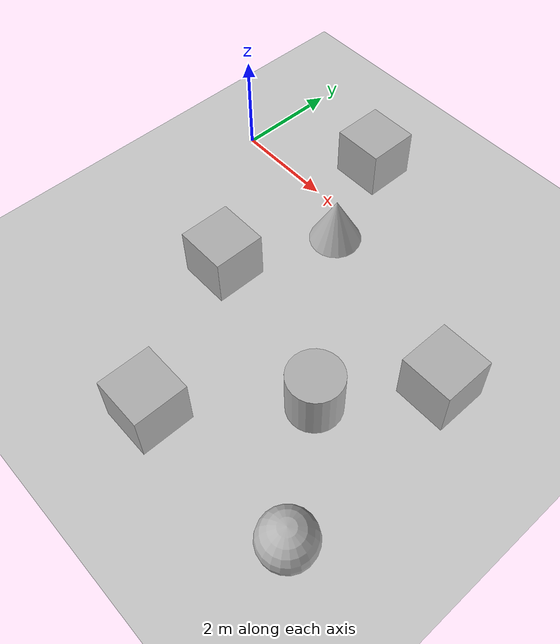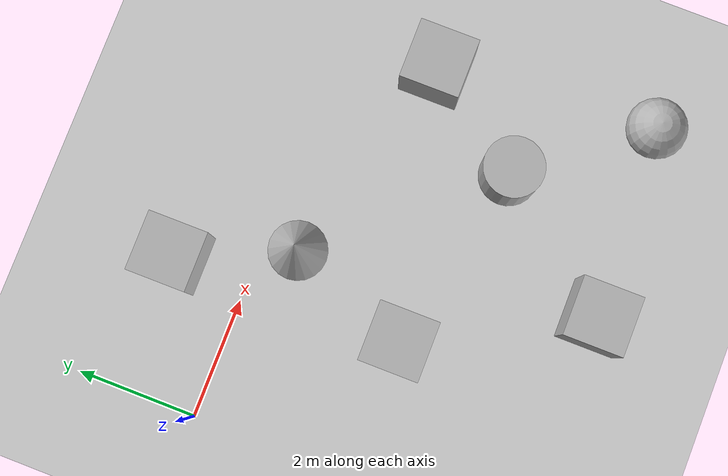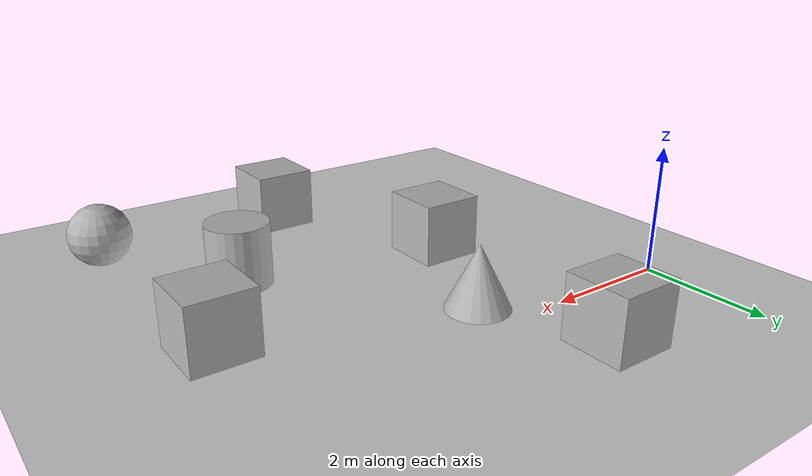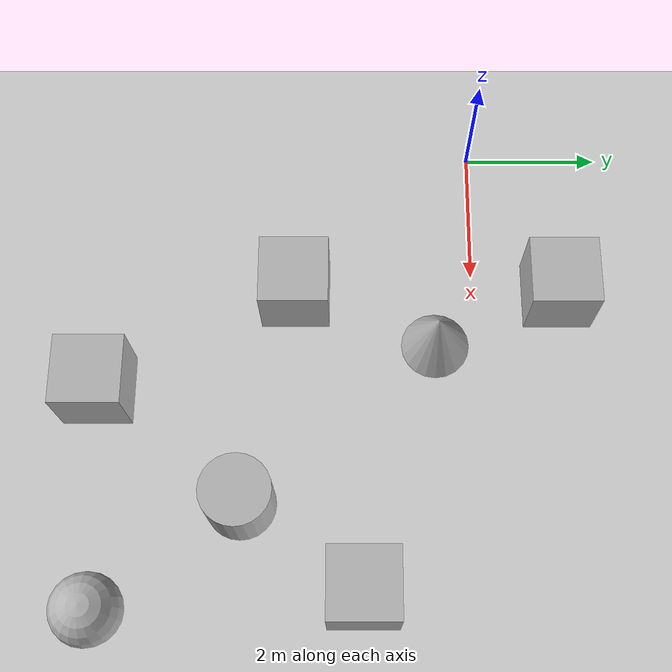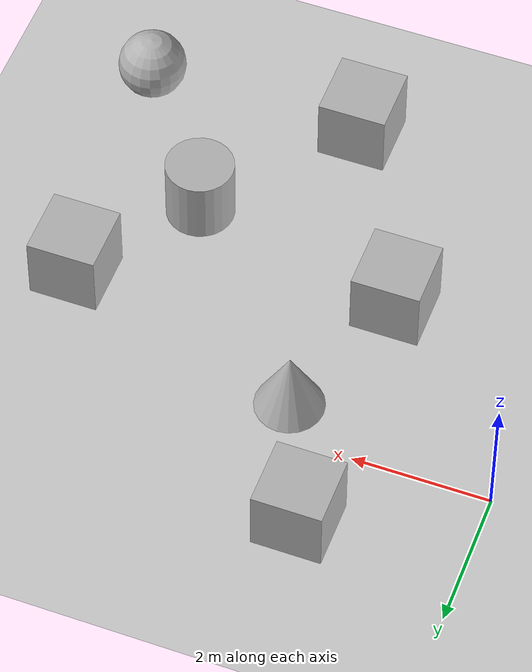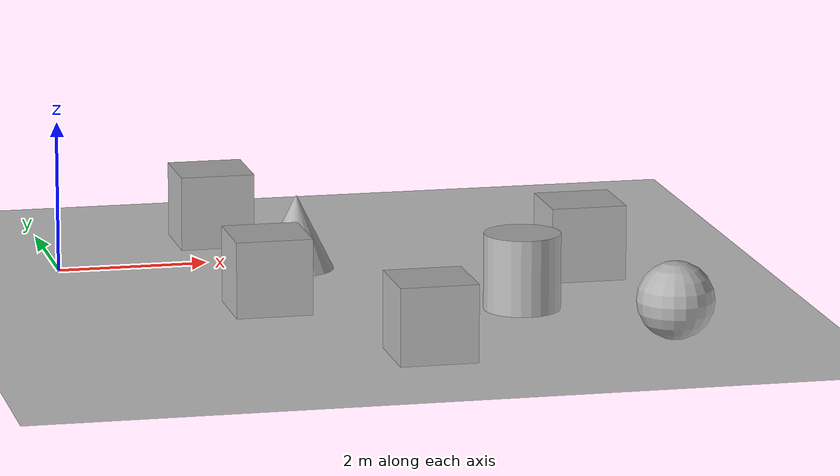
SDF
<sdf version='1.10'>
  <world name='my_world'>
    <physics name='1ms' type='ignored'>
      <max_step_size>0.001</max_step_size>
      <real_time_factor>1</real_time_factor>
      <real_time_update_rate>1000</real_time_update_rate>
    </physics>
    <plugin name='gz::sim::systems::Physics' filename='gz-sim-physics-system'/>
    <plugin name='gz::sim::systems::UserCommands' filename='gz-sim-user-commands-system'/>
    <plugin name='gz::sim::systems::SceneBroadcaster' filename='gz-sim-scene-broadcaster-system'/>
    <plugin name='gz::sim::systems::Sensors' filename='gz-sim-sensors-system'>
      <render_engine>ogre2</render_engine>
    </plugin>
    <gravity>0 0 -9.8000000000000007</gravity>
    <magnetic_field>5.5644999999999998e-06 2.2875799999999999e-05 -4.2388400000000002e-05</magnetic_field>
    <atmosphere type='adiabatic'/>
    <scene>
      <ambient>0.400000006 0.400000006 0.400000006 1</ambient>
      <background>0.699999988 0.699999988 0.699999988 1</background>
      <shadows>true</shadows>
    </scene>
    <model name='ground_plane'>
      <static>true</static>
      <link name='link'>
        <collision name='collision'>
          <geometry>
            <plane>
              <normal>0 0 1</normal>
              <size>100 100</size>
            </plane>
          </geometry>
          <surface>
            <friction>
              <ode/>
            </friction>
            <bounce/>
            <contact/>
          </surface>
        </collision>
        <visual name='visual'>
          <geometry>
            <plane>
              <normal>0 0 1</normal>
              <size>100 100</size>
            </plane>
          </geometry>
          <material>
            <ambient>0.800000012 0.800000012 0.800000012 1</ambient>
            <diffuse>0.800000012 0.800000012 0.800000012 1</diffuse>
            <specular>0.800000012 0.800000012 0.800000012 1</specular>
          </material>
        </visual>
        <pose>0 0 0 0 0 0</pose>
        <inertial>
          <pose>0 0 0 0 0 0</pose>
          <mass>1</mass>
          <inertia>
            <ixx>1</ixx>
            <ixy>0</ixy>
            <ixz>0</ixz>
            <iyy>1</iyy>
            <iyz>0</iyz>
            <izz>1</izz>
          </inertia>
        </inertial>
        <enable_wind>false</enable_wind>
      </link>
      <pose>0 0 0 0 0 0</pose>
      <self_collide>false</self_collide>
    </model>
    <model name='box'>
      <pose>2.3013719987578574 1.254581479618619 0.49999999019962799 3.5121241614875925e-18 -5.180946072981772e-17 1.2500827284559298e-17</pose>
      <link name='box_link'>
        <inertial>
          <inertia>
            <ixx>0.16666</ixx>
            <ixy>0</ixy>
            <ixz>0</ixz>
            <iyy>0.16666</iyy>
            <iyz>0</iyz>
            <izz>0.16666</izz>
          </inertia>
          <mass>1</mass>
          <pose>0 0 0 0 0 0</pose>
        </inertial>
        <collision name='box_collision'>
          <geometry>
            <box>
              <size>1 1 1</size>
            </box>
          </geometry>
          <surface>
            <friction>
              <ode/>
            </friction>
            <bounce/>
            <contact/>
          </surface>
        </collision>
        <visual name='box_visual'>
          <geometry>
            <box>
              <size>1 1 1</size>
            </box>
          </geometry>
          <material>
            <ambient>0.300000012 0.300000012 0.300000012 1</ambient>
            <diffuse>0.699999988 0.699999988 0.699999988 1</diffuse>
            <specular>1 1 1 1</specular>
          </material>
        </visual>
        <pose>0 0 0 0 0 0</pose>
        <enable_wind>false</enable_wind>
      </link>
      <static>false</static>
      <self_collide>false</self_collide>
    </model>
    <model name='box_0'>
      <pose>6.714759485641876 -1.6379969433879151 0.49999999019962615 6.2417043928416177e-19 -5.402248854504888e-17 1.383752955343259e-17</pose>
      <link name='box_link'>
        <inertial>
          <inertia>
            <ixx>0.16666</ixx>
            <ixy>0</ixy>
            <ixz>0</ixz>
            <iyy>0.16666</iyy>
            <iyz>0</iyz>
            <izz>0.16666</izz>
          </inertia>
          <mass>1</mass>
          <pose>0 0 0 0 0 0</pose>
        </inertial>
        <collision name='box_collision'>
          <geometry>
            <box>
              <size>1 1 1</size>
            </box>
          </geometry>
          <surface>
            <friction>
              <ode/>
            </friction>
            <bounce/>
            <contact/>
          </surface>
        </collision>
        <visual name='box_visual'>
          <geometry>
            <box>
              <size>1 1 1</size>
            </box>
          </geometry>
          <material>
            <ambient>0.300000012 0.300000012 0.300000012 1</ambient>
            <diffuse>0.699999988 0.699999988 0.699999988 1</diffuse>
            <specular>1 1 1 1</specular>
          </material>
        </visual>
        <pose>0 0 0 0 0 0</pose>
        <enable_wind>false</enable_wind>
      </link>
      <static>false</static>
      <self_collide>false</self_collide>
    </model>
    <model name='box_1'>
      <pose>2.2954957449747617 -2.638305858610944 0.49999999019962749 3.3387404953613142e-18 -5.206132862729415e-17 1.2347924713621128e-17</pose>
      <link name='box_link'>
        <inertial>
          <inertia>
            <ixx>0.16666</ixx>
            <ixy>0</ixy>
            <ixz>0</ixz>
            <iyy>0.16666</iyy>
            <iyz>0</iyz>
            <izz>0.16666</izz>
          </inertia>
          <mass>1</mass>
          <pose>0 0 0 0 0 0</pose>
        </inertial>
        <collision name='box_collision'>
          <geometry>
            <box>
              <size>1 1 1</size>
            </box>
          </geometry>
          <surface>
            <friction>
              <ode/>
            </friction>
            <bounce/>
            <contact/>
          </surface>
        </collision>
        <visual name='box_visual'>
          <geometry>
            <box>
              <size>1 1 1</size>
            </box>
          </geometry>
          <material>
            <ambient>0.300000012 0.300000012 0.300000012 1</ambient>
            <diffuse>0.699999988 0.699999988 0.699999988 1</diffuse>
            <specular>1 1 1 1</specular>
          </material>
        </visual>
        <pose>0 0 0 0 0 0</pose>
        <enable_wind>false</enable_wind>
      </link>
      <static>false</static>
      <self_collide>false</self_collide>
    </model>
    <model name='cone'>
      <pose>3.1058620561734416 -0.57084550726240002 0.49999999602630385 2.1478264488938136e-09 -8.015038703800579e-09 -1.1826538266170839e-13</pose>
      <link name='cone_link'>
        <inertial>
          <inertia>
            <ixx>0.074999999999999997</ixx>
            <ixy>0</ixy>
            <ixz>0</ixz>
            <iyy>0.074999999999999997</iyy>
            <iyz>0</iyz>
            <izz>0.074999999999999997</izz>
          </inertia>
          <mass>1</mass>
          <pose>0 0 0 0 0 0</pose>
        </inertial>
        <collision name='cone_collision'>
          <geometry>
            <cone>
              <radius>0.5</radius>
              <length>1</length>
            </cone>
          </geometry>
          <surface>
            <friction>
              <ode/>
            </friction>
            <bounce/>
            <contact/>
          </surface>
        </collision>
        <visual name='cone_visual'>
          <geometry>
            <cone>
              <radius>0.5</radius>
              <length>1</length>
            </cone>
          </geometry>
          <material>
            <ambient>0.300000012 0.300000012 0.300000012 1</ambient>
            <diffuse>0.699999988 0.699999988 0.699999988 1</diffuse>
            <specular>1 1 1 1</specular>
          </material>
        </visual>
        <pose>0 0 0 0 0 0</pose>
        <enable_wind>false</enable_wind>
      </link>
      <static>false</static>
      <self_collide>false</self_collide>
    </model>
    <model name='sphere'>
      <pose>7.0054008440719784 -5.3078883988722856 0.49999999020007974 0 0 0</pose>
      <link name='sphere_link'>
        <inertial>
          <inertia>
            <ixx>0.10000000000000001</ixx>
            <ixy>0</ixy>
            <ixz>0</ixz>
            <iyy>0.10000000000000001</iyy>
            <iyz>0</iyz>
            <izz>0.10000000000000001</izz>
          </inertia>
          <mass>1</mass>
          <pose>0 0 0 0 0 0</pose>
        </inertial>
        <collision name='sphere_collision'>
          <geometry>
            <sphere>
              <radius>0.5</radius>
            </sphere>
          </geometry>
          <surface>
            <friction>
              <ode/>
            </friction>
            <bounce/>
            <contact/>
          </surface>
        </collision>
        <visual name='sphere_visual'>
          <geometry>
            <sphere>
              <radius>0.5</radius>
            </sphere>
          </geometry>
          <material>
            <ambient>0.300000012 0.300000012 0.300000012 1</ambient>
            <diffuse>0.699999988 0.699999988 0.699999988 1</diffuse>
            <specular>1 1 1 1</specular>
          </material>
        </visual>
        <pose>0 0 0 0 0 0</pose>
        <enable_wind>false</enable_wind>
      </link>
      <static>false</static>
      <self_collide>false</self_collide>
    </model>
    <model name='cylinder'>
      <pose>5.4991593516788209 -3.3569746748037961 0.49999999631413172 9.0649628068229104e-17 -5.9950737551080477e-17 3.4203115397092969e-17</pose>
      <link name='cylinder_link'>
        <inertial>
          <inertia>
            <ixx>0.14580000000000001</ixx>
            <ixy>0</ixy>
            <ixz>0</ixz>
            <iyy>0.14580000000000001</iyy>
            <iyz>0</iyz>
            <izz>0.125</izz>
          </inertia>
          <mass>1</mass>
          <pose>0 0 0 0 0 0</pose>
        </inertial>
        <collision name='cylinder_collision'>
          <geometry>
            <cylinder>
              <radius>0.5</radius>
              <length>1</length>
            </cylinder>
          </geometry>
          <surface>
            <friction>
              <ode/>
            </friction>
            <bounce/>
            <contact/>
          </surface>
        </collision>
        <visual name='cylinder_visual'>
          <geometry>
            <cylinder>
              <radius>0.5</radius>
              <length>1</length>
            </cylinder>
          </geometry>
          <material>
            <ambient>0.300000012 0.300000012 0.300000012 1</ambient>
            <diffuse>0.699999988 0.699999988 0.699999988 1</diffuse>
            <specular>1 1 1 1</specular>
          </material>
        </visual>
        <pose>0 0 0 0 0 0</pose>
        <enable_wind>false</enable_wind>
      </link>
      <static>false</static>
      <self_collide>false</self_collide>
    </model>
    <model name='box_2'>
      <pose>3.801980850875295 -5.4704004546424789 0.49999999019962615 2.1417223714331391e-17 -3.3662044008249342e-17 6.8230611457670625e-18</pose>
      <link name='box_link'>
        <inertial>
          <inertia>
            <ixx>0.16666</ixx>
            <ixy>0</ixy>
            <ixz>0</ixz>
            <iyy>0.16666</iyy>
            <iyz>0</iyz>
            <izz>0.16666</izz>
          </inertia>
          <mass>1</mass>
          <pose>0 0 0 0 0 0</pose>
        </inertial>
        <collision name='box_collision'>
          <geometry>
            <box>
              <size>1 1 1</size>
            </box>
          </geometry>
          <surface>
            <friction>
              <ode/>
            </friction>
            <bounce/>
            <contact/>
          </surface>
        </collision>
        <visual name='box_visual'>
          <geometry>
            <box>
              <size>1 1 1</size>
            </box>
          </geometry>
          <material>
            <ambient>0.300000012 0.300000012 0.300000012 1</ambient>
            <diffuse>0.699999988 0.699999988 0.699999988 1</diffuse>
            <specular>1 1 1 1</specular>
          </material>
        </visual>
        <pose>0 0 0 0 0 0</pose>
        <enable_wind>false</enable_wind>
      </link>
      <static>false</static>
      <self_collide>false</self_collide>
    </model>
    <light name='sun' type='directional'>
      <pose>0 0 10 0 0 0</pose>
      <cast_shadows>true</cast_shadows>
      <intensity>1</intensity>
      <direction>-0.5 0.10000000000000001 -0.90000000000000002</direction>
      <diffuse>0.800000012 0.800000012 0.800000012 1</diffuse>
      <specular>0.200000003 0.200000003 0.200000003 1</specular>
      <attenuation>
        <range>1000</range>
        <linear>0.01</linear>
        <constant>0.90000000000000002</constant>
        <quadratic>0.001</quadratic>
      </attenuation>
      <spot>
        <inner_angle>0</inner_angle>
        <outer_angle>0</outer_angle>
        <falloff>0</falloff>
      </spot>
    </light>
  </world>
</sdf>
